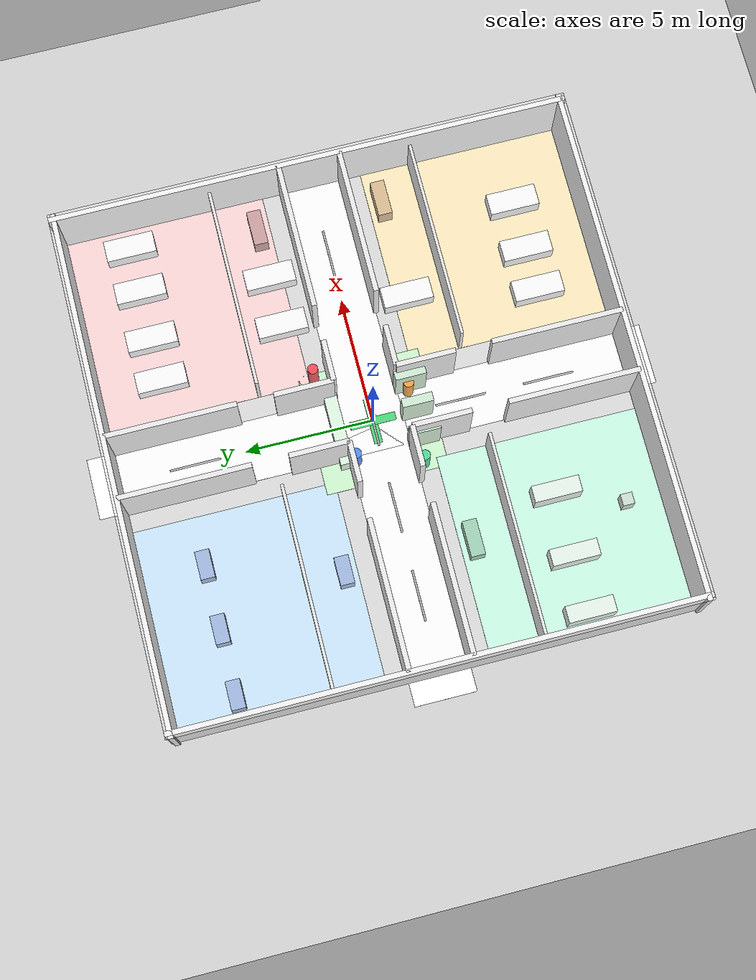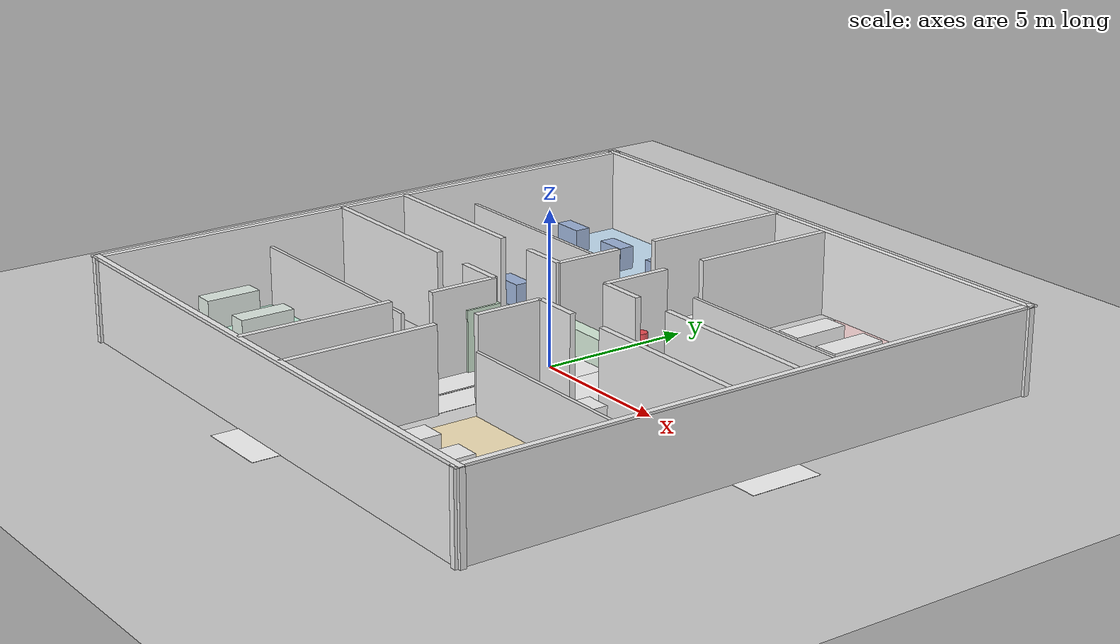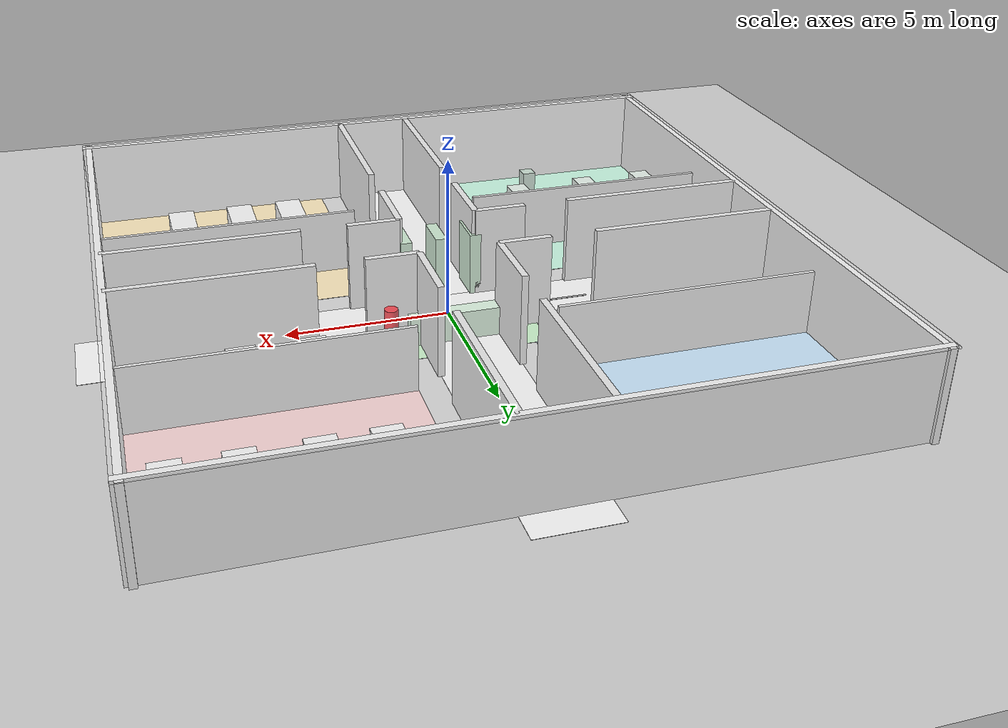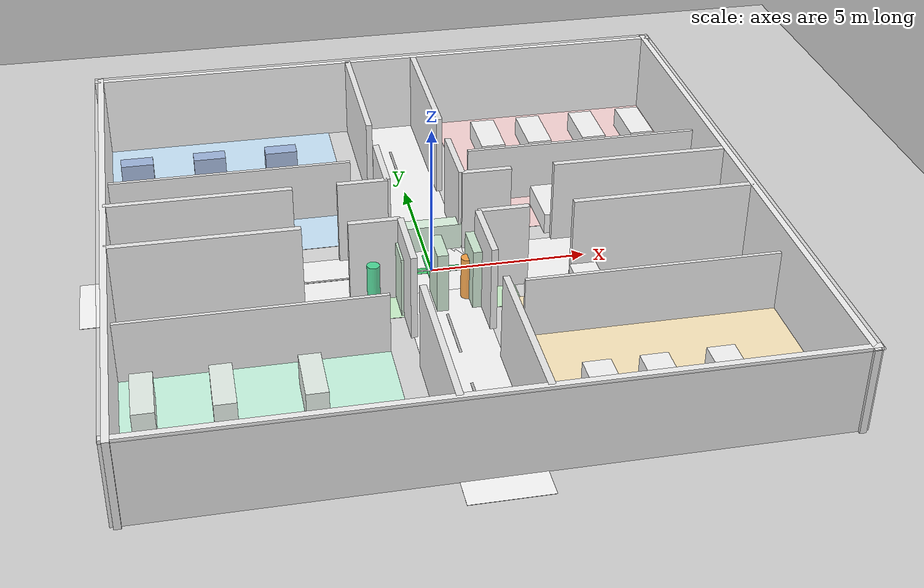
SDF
<?xml version="1.0" ?>
<sdf version="1.7">
  <world name="hospital_pharmacy">

    <!-- ===== PHYSICS & PLUGINS ===== -->
    <physics name="1ms" type="ignored">
      <max_step_size>0.001</max_step_size>
      <real_time_factor>1.0</real_time_factor>
    </physics>
    <plugin filename="gz-sim-physics-system"           name="gz::sim::systems::Physics"/>
    <plugin filename="gz-sim-user-commands-system"     name="gz::sim::systems::UserCommands"/>
    <plugin filename="gz-sim-scene-broadcaster-system" name="gz::sim::systems::SceneBroadcaster"/>
    <plugin filename="gz-sim-sensors-system"           name="gz::sim::systems::Sensors">
      <render_engine>ogre2</render_engine>
    </plugin>

    <!-- ===== LIGHTING ===== -->
    <scene>
      <ambient>0.5 0.5 0.52 1</ambient>
      <background>0.82 0.88 0.95 1</background>
    </scene>

    <light name="sun" type="directional">
      <cast_shadows>true</cast_shadows>
      <pose>0 0 20 0 -0.4 0.3</pose>
      <diffuse>0.95 0.93 0.88 1</diffuse>
      <specular>0.25 0.25 0.25 1</specular>
      <direction>-0.4 0.2 -0.9</direction>
    </light>

    <light name="fill_light" type="point">
      <pose>0 0 4.5 0 0 0</pose>
      <diffuse>0.65 0.70 0.75 1</diffuse>
      <attenuation><range>30</range><linear>0.04</linear></attenuation>
    </light>

    <!-- ===== GROUND ===== -->
    <model name="ground">
      <static>true</static>
      <link name="link">
        <collision name="col">
          <geometry><plane><normal>0 0 1</normal><size>30 30</size></plane></geometry>
        </collision>
        <visual name="vis">
          <geometry><plane><normal>0 0 1</normal><size>30 30</size></plane></geometry>
          <material><ambient>0.80 0.80 0.80 1</ambient><diffuse>0.80 0.80 0.80 1</diffuse></material>
        </visual>
      </link>
    </model>

    <!-- ===== DEPARTMENT FLOOR OVERLAYS (z=0.005) ===== -->

    <!-- PHARMACY — light green -->
    <model name="floor_pharmacy"><static>true</static><pose>0 0 0.005 0 0 0</pose>
      <link name="link"><visual name="vis">
        <geometry><box><size>4.8 4.8 0.01</size></box></geometry>
        <material><ambient>0.74 0.94 0.74 1</ambient><diffuse>0.74 0.94 0.74 1</diffuse></material>
      </visual></link>
    </model>

    <!-- REANIMATION NE — warm red -->
    <model name="floor_reanimation"><static>true</static><pose>6.0 6.0 0.005 0 0 0</pose>
      <link name="link"><visual name="vis">
        <geometry><box><size>8.0 8.0 0.01</size></box></geometry>
        <material><ambient>0.96 0.78 0.78 1</ambient><diffuse>0.96 0.78 0.78 1</diffuse></material>
      </visual></link>
    </model>

    <!-- EMERGENCY SE — warm orange -->
    <model name="floor_emergency"><static>true</static><pose>6.0 -6.0 0.005 0 0 0</pose>
      <link name="link"><visual name="vis">
        <geometry><box><size>8.0 8.0 0.01</size></box></geometry>
        <material><ambient>0.98 0.88 0.66 1</ambient><diffuse>0.98 0.88 0.66 1</diffuse></material>
      </visual></link>
    </model>

    <!-- CONSULTATION NW — sky blue -->
    <model name="floor_consultation"><static>true</static><pose>-6.0 6.0 0.005 0 0 0</pose>
      <link name="link"><visual name="vis">
        <geometry><box><size>8.0 8.0 0.01</size></box></geometry>
        <material><ambient>0.72 0.86 0.97 1</ambient><diffuse>0.72 0.86 0.97 1</diffuse></material>
      </visual></link>
    </model>

    <!-- SURGERY SW — mint green -->
    <model name="floor_surgery"><static>true</static><pose>-6.0 -6.0 0.005 0 0 0</pose>
      <link name="link"><visual name="vis">
        <geometry><box><size>8.0 8.0 0.01</size></box></geometry>
        <material><ambient>0.72 0.96 0.85 1</ambient><diffuse>0.72 0.96 0.85 1</diffuse></material>
      </visual></link>
    </model>

    <!-- CORRIDORS — bright white -->
    <model name="floor_corridor_h"><static>true</static><pose>0 0 0.006 0 0 0</pose>
      <link name="link"><visual name="vis">
        <geometry><box><size>22 2.4 0.01</size></box></geometry>
        <material><ambient>0.97 0.97 0.97 1</ambient><diffuse>0.97 0.97 0.97 1</diffuse></material>
      </visual></link>
    </model>
    <model name="floor_corridor_v"><static>true</static><pose>0 0 0.006 0 0 0</pose>
      <link name="link"><visual name="vis">
        <geometry><box><size>2.4 22 0.01</size></box></geometry>
        <material><ambient>0.97 0.97 0.97 1</ambient><diffuse>0.97 0.97 0.97 1</diffuse></material>
      </visual></link>
    </model>

    <!-- ===== OUTER WALLS (h=2.8 m, t=0.2 m) ===== -->
    <model name="wall_N"><static>true</static><pose>0 10 1.4 0 0 0</pose>
      <link name="link">
        <collision name="col"><geometry><box><size>20.4 0.2 2.8</size></box></geometry></collision>
        <visual name="vis"><geometry><box><size>20.4 0.2 2.8</size></box></geometry>
          <material><ambient>0.93 0.93 0.93 1</ambient><diffuse>0.93 0.93 0.93 1</diffuse></material></visual>
      </link></model>
    <model name="wall_S"><static>true</static><pose>0 -10 1.4 0 0 0</pose>
      <link name="link">
        <collision name="col"><geometry><box><size>20.4 0.2 2.8</size></box></geometry></collision>
        <visual name="vis"><geometry><box><size>20.4 0.2 2.8</size></box></geometry>
          <material><ambient>0.93 0.93 0.93 1</ambient><diffuse>0.93 0.93 0.93 1</diffuse></material></visual>
      </link></model>
    <model name="wall_W"><static>true</static><pose>-10 0 1.4 0 0 0</pose>
      <link name="link">
        <collision name="col"><geometry><box><size>0.2 20.4 2.8</size></box></geometry></collision>
        <visual name="vis"><geometry><box><size>0.2 20.4 2.8</size></box></geometry>
          <material><ambient>0.93 0.93 0.93 1</ambient><diffuse>0.93 0.93 0.93 1</diffuse></material></visual>
      </link></model>
    <model name="wall_E"><static>true</static><pose>10 0 1.4 0 0 0</pose>
      <link name="link">
        <collision name="col"><geometry><box><size>0.2 20.4 2.8</size></box></geometry></collision>
        <visual name="vis"><geometry><box><size>0.2 20.4 2.8</size></box></geometry>
          <material><ambient>0.93 0.93 0.93 1</ambient><diffuse>0.93 0.93 0.93 1</diffuse></material></visual>
      </link></model>

    <!-- ===== INTERNAL DEPARTMENT WALLS WITH DOOR OPENINGS (1.4 m wide) ===== -->
    <!--
      Corridor axes: y=+1.2 (north side), y=-1.2 (south side), x=+1.2 (east), x=-1.2 (west)
      Door openings centred in each wall segment to allow Nav2 to pass through.
    -->

    <!-- --- NE / Reanimation south wall (y=1.2) --- -->
    <!-- Door opening: x=2.8 to 4.2.  Segments: x=1.2..2.8 and x=4.2..10 -->
    <model name="w_NE_S_1"><static>true</static><pose>2.0 1.2 1.4 0 0 0</pose>
      <link name="link">
        <collision name="col"><geometry><box><size>1.6 0.2 2.8</size></box></geometry></collision>
        <visual name="vis"><geometry><box><size>1.6 0.2 2.8</size></box></geometry>
          <material><ambient>0.88 0.88 0.88 1</ambient><diffuse>0.88 0.88 0.88 1</diffuse></material></visual>
      </link></model>
    <model name="w_NE_S_2"><static>true</static><pose>7.1 1.2 1.4 0 0 0</pose>
      <link name="link">
        <collision name="col"><geometry><box><size>5.8 0.2 2.8</size></box></geometry></collision>
        <visual name="vis"><geometry><box><size>5.8 0.2 2.8</size></box></geometry>
          <material><ambient>0.88 0.88 0.88 1</ambient><diffuse>0.88 0.88 0.88 1</diffuse></material></visual>
      </link></model>

    <!-- NE west wall (x=1.2). Door opening: y=3.5 to 4.9 -->
    <model name="w_NE_W_1"><static>true</static><pose>1.2 2.35 1.4 0 0 0</pose>
      <link name="link">
        <collision name="col"><geometry><box><size>0.2 2.3 2.8</size></box></geometry></collision>
        <visual name="vis"><geometry><box><size>0.2 2.3 2.8</size></box></geometry>
          <material><ambient>0.88 0.88 0.88 1</ambient><diffuse>0.88 0.88 0.88 1</diffuse></material></visual>
      </link></model>
    <model name="w_NE_W_2"><static>true</static><pose>1.2 7.45 1.4 0 0 0</pose>
      <link name="link">
        <collision name="col"><geometry><box><size>0.2 5.1 2.8</size></box></geometry></collision>
        <visual name="vis"><geometry><box><size>0.2 5.1 2.8</size></box></geometry>
          <material><ambient>0.88 0.88 0.88 1</ambient><diffuse>0.88 0.88 0.88 1</diffuse></material></visual>
      </link></model>

    <!-- --- SE / Emergency north wall (y=-1.2) --- -->
    <model name="w_SE_N_1"><static>true</static><pose>2.0 -1.2 1.4 0 0 0</pose>
      <link name="link">
        <collision name="col"><geometry><box><size>1.6 0.2 2.8</size></box></geometry></collision>
        <visual name="vis"><geometry><box><size>1.6 0.2 2.8</size></box></geometry>
          <material><ambient>0.88 0.88 0.88 1</ambient><diffuse>0.88 0.88 0.88 1</diffuse></material></visual>
      </link></model>
    <model name="w_SE_N_2"><static>true</static><pose>7.1 -1.2 1.4 0 0 0</pose>
      <link name="link">
        <collision name="col"><geometry><box><size>5.8 0.2 2.8</size></box></geometry></collision>
        <visual name="vis"><geometry><box><size>5.8 0.2 2.8</size></box></geometry>
          <material><ambient>0.88 0.88 0.88 1</ambient><diffuse>0.88 0.88 0.88 1</diffuse></material></visual>
      </link></model>

    <!-- SE west wall (x=1.2) -->
    <model name="w_SE_W_1"><static>true</static><pose>1.2 -2.35 1.4 0 0 0</pose>
      <link name="link">
        <collision name="col"><geometry><box><size>0.2 2.3 2.8</size></box></geometry></collision>
        <visual name="vis"><geometry><box><size>0.2 2.3 2.8</size></box></geometry>
          <material><ambient>0.88 0.88 0.88 1</ambient><diffuse>0.88 0.88 0.88 1</diffuse></material></visual>
      </link></model>
    <model name="w_SE_W_2"><static>true</static><pose>1.2 -7.45 1.4 0 0 0</pose>
      <link name="link">
        <collision name="col"><geometry><box><size>0.2 5.1 2.8</size></box></geometry></collision>
        <visual name="vis"><geometry><box><size>0.2 5.1 2.8</size></box></geometry>
          <material><ambient>0.88 0.88 0.88 1</ambient><diffuse>0.88 0.88 0.88 1</diffuse></material></visual>
      </link></model>

    <!-- --- NW / Consultation south wall (y=1.2) --- -->
    <model name="w_NW_S_1"><static>true</static><pose>-2.0 1.2 1.4 0 0 0</pose>
      <link name="link">
        <collision name="col"><geometry><box><size>1.6 0.2 2.8</size></box></geometry></collision>
        <visual name="vis"><geometry><box><size>1.6 0.2 2.8</size></box></geometry>
          <material><ambient>0.88 0.88 0.88 1</ambient><diffuse>0.88 0.88 0.88 1</diffuse></material></visual>
      </link></model>
    <model name="w_NW_S_2"><static>true</static><pose>-7.1 1.2 1.4 0 0 0</pose>
      <link name="link">
        <collision name="col"><geometry><box><size>5.8 0.2 2.8</size></box></geometry></collision>
        <visual name="vis"><geometry><box><size>5.8 0.2 2.8</size></box></geometry>
          <material><ambient>0.88 0.88 0.88 1</ambient><diffuse>0.88 0.88 0.88 1</diffuse></material></visual>
      </link></model>

    <!-- NW east wall (x=-1.2) -->
    <model name="w_NW_E_1"><static>true</static><pose>-1.2 2.35 1.4 0 0 0</pose>
      <link name="link">
        <collision name="col"><geometry><box><size>0.2 2.3 2.8</size></box></geometry></collision>
        <visual name="vis"><geometry><box><size>0.2 2.3 2.8</size></box></geometry>
          <material><ambient>0.88 0.88 0.88 1</ambient><diffuse>0.88 0.88 0.88 1</diffuse></material></visual>
      </link></model>
    <model name="w_NW_E_2"><static>true</static><pose>-1.2 7.45 1.4 0 0 0</pose>
      <link name="link">
        <collision name="col"><geometry><box><size>0.2 5.1 2.8</size></box></geometry></collision>
        <visual name="vis"><geometry><box><size>0.2 5.1 2.8</size></box></geometry>
          <material><ambient>0.88 0.88 0.88 1</ambient><diffuse>0.88 0.88 0.88 1</diffuse></material></visual>
      </link></model>

    <!-- --- SW / Surgery north wall (y=-1.2) --- -->
    <model name="w_SW_N_1"><static>true</static><pose>-2.0 -1.2 1.4 0 0 0</pose>
      <link name="link">
        <collision name="col"><geometry><box><size>1.6 0.2 2.8</size></box></geometry></collision>
        <visual name="vis"><geometry><box><size>1.6 0.2 2.8</size></box></geometry>
          <material><ambient>0.88 0.88 0.88 1</ambient><diffuse>0.88 0.88 0.88 1</diffuse></material></visual>
      </link></model>
    <model name="w_SW_N_2"><static>true</static><pose>-7.1 -1.2 1.4 0 0 0</pose>
      <link name="link">
        <collision name="col"><geometry><box><size>5.8 0.2 2.8</size></box></geometry></collision>
        <visual name="vis"><geometry><box><size>5.8 0.2 2.8</size></box></geometry>
          <material><ambient>0.88 0.88 0.88 1</ambient><diffuse>0.88 0.88 0.88 1</diffuse></material></visual>
      </link></model>

    <!-- SW east wall (x=-1.2) -->
    <model name="w_SW_E_1"><static>true</static><pose>-1.2 -2.35 1.4 0 0 0</pose>
      <link name="link">
        <collision name="col"><geometry><box><size>0.2 2.3 2.8</size></box></geometry></collision>
        <visual name="vis"><geometry><box><size>0.2 2.3 2.8</size></box></geometry>
          <material><ambient>0.88 0.88 0.88 1</ambient><diffuse>0.88 0.88 0.88 1</diffuse></material></visual>
      </link></model>
    <model name="w_SW_E_2"><static>true</static><pose>-1.2 -7.45 1.4 0 0 0</pose>
      <link name="link">
        <collision name="col"><geometry><box><size>0.2 5.1 2.8</size></box></geometry></collision>
        <visual name="vis"><geometry><box><size>0.2 5.1 2.8</size></box></geometry>
          <material><ambient>0.88 0.88 0.88 1</ambient><diffuse>0.88 0.88 0.88 1</diffuse></material></visual>
      </link></model>

    <!-- ===== INTERNAL ROOM PARTITIONS ===== -->
    <!-- Each department has one internal partition dividing it into 2 sub-rooms -->
    <model name="part_reanim"><static>true</static><pose>6.0 4.0 1.0 0 0 0</pose>
      <link name="link">
        <collision name="col"><geometry><box><size>8.0 0.12 2.0</size></box></geometry></collision>
        <visual name="vis"><geometry><box><size>8.0 0.12 2.0</size></box></geometry>
          <material><ambient>0.87 0.87 0.87 1</ambient><diffuse>0.87 0.87 0.87 1</diffuse></material></visual>
      </link></model>

    <model name="part_emerg"><static>true</static><pose>6.0 -4.0 1.0 0 0 0</pose>
      <link name="link">
        <collision name="col"><geometry><box><size>8.0 0.12 2.0</size></box></geometry></collision>
        <visual name="vis"><geometry><box><size>8.0 0.12 2.0</size></box></geometry>
          <material><ambient>0.87 0.87 0.87 1</ambient><diffuse>0.87 0.87 0.87 1</diffuse></material></visual>
      </link></model>

    <model name="part_consult"><static>true</static><pose>-6.0 4.0 1.0 0 0 0</pose>
      <link name="link">
        <collision name="col"><geometry><box><size>8.0 0.12 2.0</size></box></geometry></collision>
        <visual name="vis"><geometry><box><size>8.0 0.12 2.0</size></box></geometry>
          <material><ambient>0.87 0.87 0.87 1</ambient><diffuse>0.87 0.87 0.87 1</diffuse></material></visual>
      </link></model>

    <model name="part_surgery"><static>true</static><pose>-6.0 -4.0 1.0 0 0 0</pose>
      <link name="link">
        <collision name="col"><geometry><box><size>8.0 0.12 2.0</size></box></geometry></collision>
        <visual name="vis"><geometry><box><size>8.0 0.12 2.0</size></box></geometry>
          <material><ambient>0.87 0.87 0.87 1</ambient><diffuse>0.87 0.87 0.87 1</diffuse></material></visual>
      </link></model>

    <!-- ===== CEILING (semi-transparent) ===== -->
    <model name="ceiling"><static>true</static><pose>0 0 2.8 0 0 0</pose>
      <link name="link"><visual name="vis">
        <geometry><box><size>20.4 20.4 0.05</size></box></geometry>
        <material><ambient>0.97 0.97 0.97 0.25</ambient><diffuse>0.97 0.97 0.97 0.25</diffuse></material>
      </visual></link>
    </model>

    <!-- ===== PHARMACY FURNITURE ===== -->
    <!-- Dispensing counter -->
    <model name="pharma_counter"><static>true</static><pose>0.0 1.4 0.45 0 0 0</pose>
      <link name="link">
        <collision name="col"><geometry><box><size>3.2 0.5 0.9</size></box></geometry></collision>
        <visual name="vis"><geometry><box><size>3.2 0.5 0.9</size></box></geometry>
          <material><ambient>0.82 0.94 0.84 1</ambient><diffuse>0.82 0.94 0.84 1</diffuse></material></visual>
      </link></model>
    <!-- 3 medicine shelves -->
    <model name="shelf_ph_1"><static>true</static><pose>1.0 -1.7 1.0 0 0 0</pose>
      <link name="link">
        <collision name="col"><geometry><box><size>0.35 1.2 2.0</size></box></geometry></collision>
        <visual name="vis"><geometry><box><size>0.35 1.2 2.0</size></box></geometry>
          <material><ambient>0.74 0.88 0.76 1</ambient><diffuse>0.74 0.88 0.76 1</diffuse></material></visual>
      </link></model>
    <model name="shelf_ph_2"><static>true</static><pose>-0.1 -1.7 1.0 0 0 0</pose>
      <link name="link">
        <collision name="col"><geometry><box><size>0.35 1.2 2.0</size></box></geometry></collision>
        <visual name="vis"><geometry><box><size>0.35 1.2 2.0</size></box></geometry>
          <material><ambient>0.74 0.88 0.76 1</ambient><diffuse>0.74 0.88 0.76 1</diffuse></material></visual>
      </link></model>
    <model name="shelf_ph_3"><static>true</static><pose>-1.2 -1.7 1.0 0 0 0</pose>
      <link name="link">
        <collision name="col"><geometry><box><size>0.35 1.2 2.0</size></box></geometry></collision>
        <visual name="vis"><geometry><box><size>0.35 1.2 2.0</size></box></geometry>
          <material><ambient>0.74 0.88 0.76 1</ambient><diffuse>0.74 0.88 0.76 1</diffuse></material></visual>
      </link></model>
    <!-- Green cross floor marking -->
    <model name="cross_h"><static>true</static><pose>0 0 0.012 0 0 0</pose>
      <link name="link"><visual name="vis"><geometry><box><size>1.8 0.32 0.01</size></box></geometry>
        <material><ambient>0.08 0.78 0.32 1</ambient><diffuse>0.08 0.78 0.32 1</diffuse></material></visual></link>
    </model>
    <model name="cross_v"><static>true</static><pose>0 0 0.013 0 0 0</pose>
      <link name="link"><visual name="vis"><geometry><box><size>0.32 1.8 0.01</size></box></geometry>
        <material><ambient>0.08 0.78 0.32 1</ambient><diffuse>0.08 0.78 0.32 1</diffuse></material></visual></link>
    </model>

    <!-- ===== REANIMATION FURNITURE ===== -->
    <!-- 4 hospital beds — north room -->
    <model name="bed_r1"><static>true</static><pose>3.5 7.5 0.35 0 0 0</pose>
      <link name="link">
        <collision name="col"><geometry><box><size>0.85 1.95 0.7</size></box></geometry></collision>
        <visual name="vis"><geometry><box><size>0.85 1.95 0.7</size></box></geometry>
          <material><ambient>0.96 0.96 0.96 1</ambient><diffuse>0.96 0.96 0.96 1</diffuse></material></visual>
      </link></model>
    <model name="bed_r2"><static>true</static><pose>5.2 7.5 0.35 0 0 0</pose>
      <link name="link">
        <collision name="col"><geometry><box><size>0.85 1.95 0.7</size></box></geometry></collision>
        <visual name="vis"><geometry><box><size>0.85 1.95 0.7</size></box></geometry>
          <material><ambient>0.96 0.96 0.96 1</ambient><diffuse>0.96 0.96 0.96 1</diffuse></material></visual>
      </link></model>
    <model name="bed_r3"><static>true</static><pose>7.2 7.5 0.35 0 0 0</pose>
      <link name="link">
        <collision name="col"><geometry><box><size>0.85 1.95 0.7</size></box></geometry></collision>
        <visual name="vis"><geometry><box><size>0.85 1.95 0.7</size></box></geometry>
          <material><ambient>0.96 0.96 0.96 1</ambient><diffuse>0.96 0.96 0.96 1</diffuse></material></visual>
      </link></model>
    <model name="bed_r4"><static>true</static><pose>9.0 7.5 0.35 0 0 0</pose>
      <link name="link">
        <collision name="col"><geometry><box><size>0.85 1.95 0.7</size></box></geometry></collision>
        <visual name="vis"><geometry><box><size>0.85 1.95 0.7</size></box></geometry>
          <material><ambient>0.96 0.96 0.96 1</ambient><diffuse>0.96 0.96 0.96 1</diffuse></material></visual>
      </link></model>
    <!-- 2 beds south room -->
    <model name="bed_r5"><static>true</static><pose>4.5 2.5 0.35 0 0 0</pose>
      <link name="link">
        <collision name="col"><geometry><box><size>0.85 1.95 0.7</size></box></geometry></collision>
        <visual name="vis"><geometry><box><size>0.85 1.95 0.7</size></box></geometry>
          <material><ambient>0.96 0.96 0.96 1</ambient><diffuse>0.96 0.96 0.96 1</diffuse></material></visual>
      </link></model>
    <model name="bed_r6"><static>true</static><pose>6.5 2.5 0.35 0 0 0</pose>
      <link name="link">
        <collision name="col"><geometry><box><size>0.85 1.95 0.7</size></box></geometry></collision>
        <visual name="vis"><geometry><box><size>0.85 1.95 0.7</size></box></geometry>
          <material><ambient>0.96 0.96 0.96 1</ambient><diffuse>0.96 0.96 0.96 1</diffuse></material></visual>
      </link></model>
    <!-- Nurse desk reanimation (near nav goal 2.2,1.8) -->
    <model name="desk_r"><static>true</static><pose>8.5 2.5 0.4 0 0 0</pose>
      <link name="link">
        <collision name="col"><geometry><box><size>1.4 0.55 0.8</size></box></geometry></collision>
        <visual name="vis"><geometry><box><size>1.4 0.55 0.8</size></box></geometry>
          <material><ambient>0.72 0.50 0.50 1</ambient><diffuse>0.72 0.50 0.50 1</diffuse></material></visual>
      </link></model>
    <!-- RED beacon cylinder at nav goal -->
    <model name="beacon_reanimation"><static>true</static><pose>2.2 1.8 0.7 0 0 0</pose>
      <link name="link">
        <collision name="col"><geometry><cylinder><radius>0.20</radius><length>1.4</length></cylinder></geometry></collision>
        <visual name="vis"><geometry><cylinder><radius>0.20</radius><length>1.4</length></cylinder></geometry>
          <material><ambient>0.92 0.08 0.12 1</ambient><diffuse>0.92 0.08 0.12 1</diffuse></material></visual>
      </link></model>

    <!-- ===== EMERGENCY FURNITURE ===== -->
    <model name="bed_e1"><static>true</static><pose>3.5 -7.5 0.35 0 0 0</pose>
      <link name="link">
        <collision name="col"><geometry><box><size>0.85 1.95 0.7</size></box></geometry></collision>
        <visual name="vis"><geometry><box><size>0.85 1.95 0.7</size></box></geometry>
          <material><ambient>0.96 0.96 0.96 1</ambient><diffuse>0.96 0.96 0.96 1</diffuse></material></visual>
      </link></model>
    <model name="bed_e2"><static>true</static><pose>5.2 -7.5 0.35 0 0 0</pose>
      <link name="link">
        <collision name="col"><geometry><box><size>0.85 1.95 0.7</size></box></geometry></collision>
        <visual name="vis"><geometry><box><size>0.85 1.95 0.7</size></box></geometry>
          <material><ambient>0.96 0.96 0.96 1</ambient><diffuse>0.96 0.96 0.96 1</diffuse></material></visual>
      </link></model>
    <model name="bed_e3"><static>true</static><pose>7.2 -7.5 0.35 0 0 0</pose>
      <link name="link">
        <collision name="col"><geometry><box><size>0.85 1.95 0.7</size></box></geometry></collision>
        <visual name="vis"><geometry><box><size>0.85 1.95 0.7</size></box></geometry>
          <material><ambient>0.96 0.96 0.96 1</ambient><diffuse>0.96 0.96 0.96 1</diffuse></material></visual>
      </link></model>
    <model name="bed_e4"><static>true</static><pose>4.5 -2.5 0.35 0 0 0</pose>
      <link name="link">
        <collision name="col"><geometry><box><size>0.85 1.95 0.7</size></box></geometry></collision>
        <visual name="vis"><geometry><box><size>0.85 1.95 0.7</size></box></geometry>
          <material><ambient>0.96 0.96 0.96 1</ambient><diffuse>0.96 0.96 0.96 1</diffuse></material></visual>
      </link></model>
    <model name="desk_e"><static>true</static><pose>8.5 -2.5 0.4 0 0 0</pose>
      <link name="link">
        <collision name="col"><geometry><box><size>1.4 0.55 0.8</size></box></geometry></collision>
        <visual name="vis"><geometry><box><size>1.4 0.55 0.8</size></box></geometry>
          <material><ambient>0.80 0.64 0.44 1</ambient><diffuse>0.80 0.64 0.44 1</diffuse></material></visual>
      </link></model>
    <!-- ORANGE beacon at nav goal (0.8,-1.6) -->
    <model name="beacon_emergency"><static>true</static><pose>0.8 -1.6 0.7 0 0 0</pose>
      <link name="link">
        <collision name="col"><geometry><cylinder><radius>0.20</radius><length>1.4</length></cylinder></geometry></collision>
        <visual name="vis"><geometry><cylinder><radius>0.20</radius><length>1.4</length></cylinder></geometry>
          <material><ambient>0.95 0.52 0.04 1</ambient><diffuse>0.95 0.52 0.04 1</diffuse></material></visual>
      </link></model>

    <!-- ===== CONSULTATION FURNITURE ===== -->
    <model name="desk_c1"><static>true</static><pose>-4.0 7.5 0.4 0 0 0</pose>
      <link name="link">
        <collision name="col"><geometry><box><size>1.1 0.55 0.8</size></box></geometry></collision>
        <visual name="vis"><geometry><box><size>1.1 0.55 0.8</size></box></geometry>
          <material><ambient>0.50 0.62 0.82 1</ambient><diffuse>0.50 0.62 0.82 1</diffuse></material></visual>
      </link></model>
    <model name="desk_c2"><static>true</static><pose>-6.5 7.5 0.4 0 0 0</pose>
      <link name="link">
        <collision name="col"><geometry><box><size>1.1 0.55 0.8</size></box></geometry></collision>
        <visual name="vis"><geometry><box><size>1.1 0.55 0.8</size></box></geometry>
          <material><ambient>0.50 0.62 0.82 1</ambient><diffuse>0.50 0.62 0.82 1</diffuse></material></visual>
      </link></model>
    <model name="desk_c3"><static>true</static><pose>-9.0 7.5 0.4 0 0 0</pose>
      <link name="link">
        <collision name="col"><geometry><box><size>1.1 0.55 0.8</size></box></geometry></collision>
        <visual name="vis"><geometry><box><size>1.1 0.55 0.8</size></box></geometry>
          <material><ambient>0.50 0.62 0.82 1</ambient><diffuse>0.50 0.62 0.82 1</diffuse></material></visual>
      </link></model>
    <model name="desk_c4"><static>true</static><pose>-5.5 2.5 0.4 0 0 0</pose>
      <link name="link">
        <collision name="col"><geometry><box><size>1.1 0.55 0.8</size></box></geometry></collision>
        <visual name="vis"><geometry><box><size>1.1 0.55 0.8</size></box></geometry>
          <material><ambient>0.50 0.62 0.82 1</ambient><diffuse>0.50 0.62 0.82 1</diffuse></material></visual>
      </link></model>
    <!-- BLUE beacon at nav goal (-1.4,1.0) -->
    <model name="beacon_consultation"><static>true</static><pose>-1.4 1.0 0.7 0 0 0</pose>
      <link name="link">
        <collision name="col"><geometry><cylinder><radius>0.20</radius><length>1.4</length></cylinder></geometry></collision>
        <visual name="vis"><geometry><cylinder><radius>0.20</radius><length>1.4</length></cylinder></geometry>
          <material><ambient>0.12 0.42 0.92 1</ambient><diffuse>0.12 0.42 0.92 1</diffuse></material></visual>
      </link></model>

    <!-- ===== SURGERY FURNITURE ===== -->
    <!-- Operating tables -->
    <model name="optable_1"><static>true</static><pose>-4.5 -6.0 0.5 0 0 0</pose>
      <link name="link">
        <collision name="col"><geometry><box><size>0.65 1.85 1.0</size></box></geometry></collision>
        <visual name="vis"><geometry><box><size>0.65 1.85 1.0</size></box></geometry>
          <material><ambient>0.86 0.92 0.88 1</ambient><diffuse>0.86 0.92 0.88 1</diffuse></material></visual>
      </link></model>
    <model name="optable_2"><static>true</static><pose>-7.0 -6.0 0.5 0 0 0</pose>
      <link name="link">
        <collision name="col"><geometry><box><size>0.65 1.85 1.0</size></box></geometry></collision>
        <visual name="vis"><geometry><box><size>0.65 1.85 1.0</size></box></geometry>
          <material><ambient>0.86 0.92 0.88 1</ambient><diffuse>0.86 0.92 0.88 1</diffuse></material></visual>
      </link></model>
    <model name="optable_3"><static>true</static><pose>-9.2 -6.0 0.5 0 0 0</pose>
      <link name="link">
        <collision name="col"><geometry><box><size>0.65 1.85 1.0</size></box></geometry></collision>
        <visual name="vis"><geometry><box><size>0.65 1.85 1.0</size></box></geometry>
          <material><ambient>0.86 0.92 0.88 1</ambient><diffuse>0.86 0.92 0.88 1</diffuse></material></visual>
      </link></model>
    <model name="trolley_s"><static>true</static><pose>-5.5 -8.5 0.4 0 0 0</pose>
      <link name="link">
        <collision name="col"><geometry><box><size>0.45 0.45 0.8</size></box></geometry></collision>
        <visual name="vis"><geometry><box><size>0.45 0.45 0.8</size></box></geometry>
          <material><ambient>0.72 0.82 0.76 1</ambient><diffuse>0.72 0.82 0.76 1</diffuse></material></visual>
      </link></model>
    <model name="desk_s"><static>true</static><pose>-5.5 -2.5 0.4 0 0 0</pose>
      <link name="link">
        <collision name="col"><geometry><box><size>1.4 0.55 0.8</size></box></geometry></collision>
        <visual name="vis"><geometry><box><size>1.4 0.55 0.8</size></box></geometry>
          <material><ambient>0.50 0.75 0.62 1</ambient><diffuse>0.50 0.75 0.62 1</diffuse></material></visual>
      </link></model>
    <!-- TEAL beacon at nav goal (-2.1,-1.5) -->
    <model name="beacon_surgery"><static>true</static><pose>-2.1 -1.5 0.7 0 0 0</pose>
      <link name="link">
        <collision name="col"><geometry><cylinder><radius>0.20</radius><length>1.4</length></cylinder></geometry></collision>
        <visual name="vis"><geometry><cylinder><radius>0.20</radius><length>1.4</length></cylinder></geometry>
          <material><ambient>0.08 0.80 0.46 1</ambient><diffuse>0.08 0.80 0.46 1</diffuse></material></visual>
      </link></model>

    <!-- ===== CORRIDOR GUIDE LINES ===== -->
    <!-- Dashed center line on horizontal corridor -->
    <model name="cline_h1"><static>true</static><pose>-7.0 0 0.015 0 0 0</pose>
      <link name="link"><visual name="vis"><geometry><box><size>2.0 0.08 0.01</size></box></geometry>
        <material><ambient>0.6 0.6 0.6 1</ambient><diffuse>0.6 0.6 0.6 1</diffuse></material></visual></link></model>
    <model name="cline_h2"><static>true</static><pose>-3.5 0 0.015 0 0 0</pose>
      <link name="link"><visual name="vis"><geometry><box><size>2.0 0.08 0.01</size></box></geometry>
        <material><ambient>0.6 0.6 0.6 1</ambient><diffuse>0.6 0.6 0.6 1</diffuse></material></visual></link></model>
    <model name="cline_h3"><static>true</static><pose>0.0 0 0.015 0 0 0</pose>
      <link name="link"><visual name="vis"><geometry><box><size>2.0 0.08 0.01</size></box></geometry>
        <material><ambient>0.6 0.6 0.6 1</ambient><diffuse>0.6 0.6 0.6 1</diffuse></material></visual></link></model>
    <model name="cline_h4"><static>true</static><pose>3.5 0 0.015 0 0 0</pose>
      <link name="link"><visual name="vis"><geometry><box><size>2.0 0.08 0.01</size></box></geometry>
        <material><ambient>0.6 0.6 0.6 1</ambient><diffuse>0.6 0.6 0.6 1</diffuse></material></visual></link></model>
    <model name="cline_h5"><static>true</static><pose>7.0 0 0.015 0 0 0</pose>
      <link name="link"><visual name="vis"><geometry><box><size>2.0 0.08 0.01</size></box></geometry>
        <material><ambient>0.6 0.6 0.6 1</ambient><diffuse>0.6 0.6 0.6 1</diffuse></material></visual></link></model>
    <!-- Vertical corridor lines -->
    <model name="cline_v1"><static>true</static><pose>0 -7.0 0.015 0 0 0</pose>
      <link name="link"><visual name="vis"><geometry><box><size>0.08 2.0 0.01</size></box></geometry>
        <material><ambient>0.6 0.6 0.6 1</ambient><diffuse>0.6 0.6 0.6 1</diffuse></material></visual></link></model>
    <model name="cline_v2"><static>true</static><pose>0 -3.5 0.015 0 0 0</pose>
      <link name="link"><visual name="vis"><geometry><box><size>0.08 2.0 0.01</size></box></geometry>
        <material><ambient>0.6 0.6 0.6 1</ambient><diffuse>0.6 0.6 0.6 1</diffuse></material></visual></link></model>
    <model name="cline_v3"><static>true</static><pose>0 3.5 0.015 0 0 0</pose>
      <link name="link"><visual name="vis"><geometry><box><size>0.08 2.0 0.01</size></box></geometry>
        <material><ambient>0.6 0.6 0.6 1</ambient><diffuse>0.6 0.6 0.6 1</diffuse></material></visual></link></model>
    <model name="cline_v4"><static>true</static><pose>0 7.0 0.015 0 0 0</pose>
      <link name="link"><visual name="vis"><geometry><box><size>0.08 2.0 0.01</size></box></geometry>
        <material><ambient>0.6 0.6 0.6 1</ambient><diffuse>0.6 0.6 0.6 1</diffuse></material></visual></link></model>

  </world>
</sdf>
